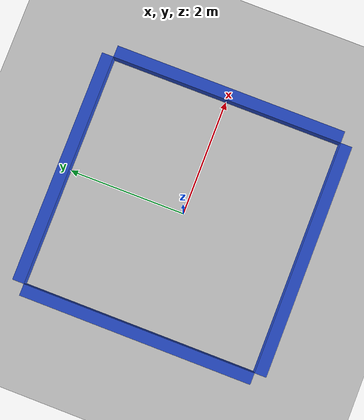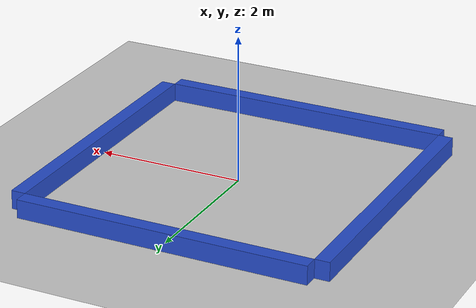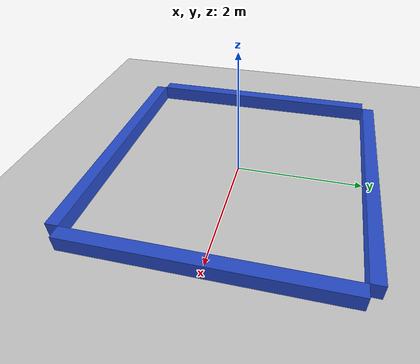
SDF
<sdf version="1.6">
 <world name="minimal_world">
  <include><uri>model://ground_plane</uri></include>
  <include><uri>model://sun</uri></include>
  <model name="back_wall">
   <pose>0 2.1 0 0 0 0</pose>
   <link name="back_wall">
    <collision name="collision"><geometry><box><size>4 0.2 0.5</size></box></geometry></collision>
    <visual name="visual">
     <geometry><box><size>4 0.2 0.5</size></box></geometry>
     <material>
      <script><name>Gazebo/Blue</name><uri>file://media/materials/scripts/gazebo.material</uri></script>
     </material>
    </visual>
   </link>
  </model>
  <model name="front_wall">
   <pose>0 -2.1 0 0 0 0</pose>
   <link name="front_wall">
    <collision name="collision"><geometry><box><size>4 0.2 0.5</size></box></geometry></collision>
    <visual name="visual">
     <geometry><box><size>4 0.2 0.5</size></box></geometry>
     <material>
      <script><name>Gazebo/Blue</name><uri>file://media/materials/scripts/gazebo.material</uri></script>
     </material>
    </visual>
   </link>
  </model>
  <model name="left_wall">
   <pose>-2.1 0 0 0 0 0</pose>
   <link name="left_wall">
    <collision name="collision"><geometry><box><size>0.2 4 0.5</size></box></geometry></collision>
    <visual name="visual">
     <geometry><box><size>0.2 4 0.5</size></box></geometry>
     <material>
      <script><name>Gazebo/Blue</name><uri>file://media/materials/scripts/gazebo.material</uri></script>
     </material>
    </visual>
   </link>
  </model>
  <model name="right_wall">
   <pose>2.1 0 0 0 0 0</pose>
   <link name="right_wall">
    <collision name="collision"><geometry><box><size>0.2 4 0.5</size></box></geometry></collision>
    <visual name="visual">
     <geometry><box><size>0.2 4 0.5</size></box></geometry>
     <material>
      <script><name>Gazebo/Blue</name><uri>file://media/materials/scripts/gazebo.material</uri></script>
     </material>
    </visual>
   </link>
  </model>
 </world>
</sdf>
